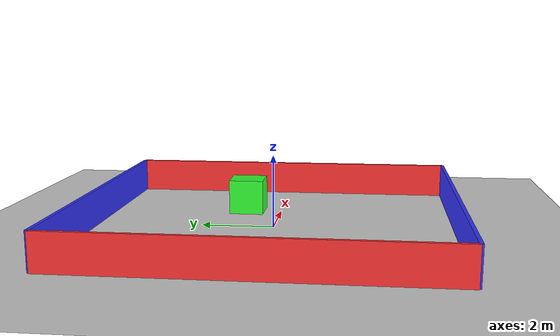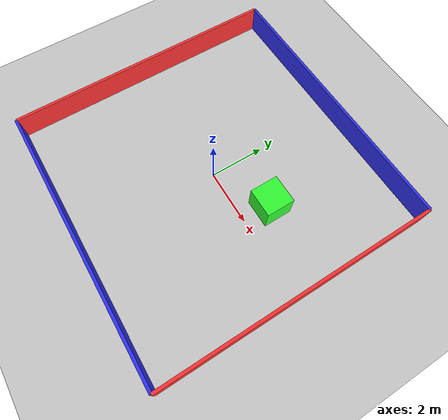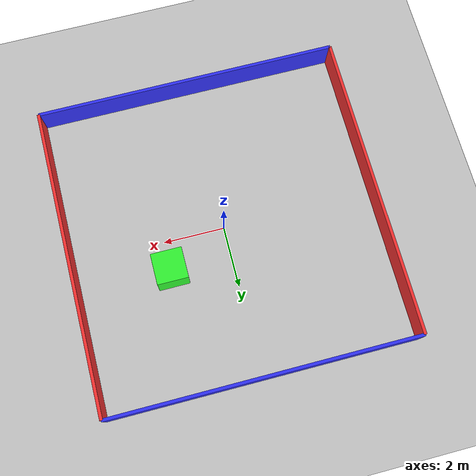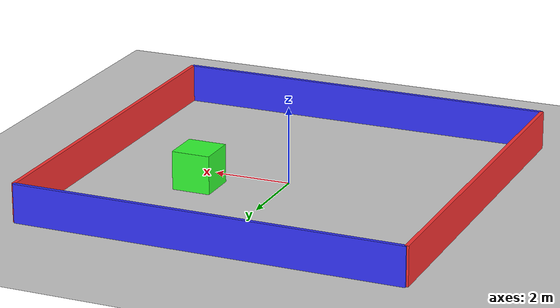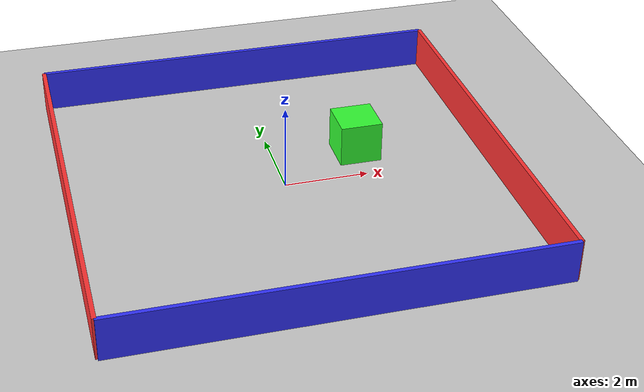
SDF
<?xml version="1.0" ?>
<sdf version="1.8">
  <world name="simple_room">

    <physics name="1ms" type="ignored">
      <max_step_size>0.001</max_step_size>
      <real_time_factor>1.0</real_time_factor>
    </physics>
    <plugin
      filename="libignition-gazebo-physics-system.so"
      name="ignition::gazebo::systems::Physics">
    </plugin>
    <plugin
      filename="libignition-gazebo-user-commands-system.so"
      name="ignition::gazebo::systems::UserCommands">
    </plugin>
    <plugin
      filename="libignition-gazebo-scene-broadcaster-system.so"
      name="ignition::gazebo::systems::SceneBroadcaster">
    </plugin>

    <light type="directional" name="sun">
      <cast_shadows>true</cast_shadows>
      <pose>0 0 10 0 0 0</pose>
      <diffuse>0.8 0.8 0.8 1</diffuse>
      <specular>0.2 0.2 0.2 1</specular>
      <attenuation>
        <range>1000</range>
        <constant>0.9</constant>
        <linear>0.01</linear>
        <quadratic>0.001</quadratic>
      </attenuation>
      <direction>-0.5 0.1 -0.9</direction>
    </light>

    <model name="ground_plane">
      <static>true</static>
      <link name="link">
        <collision name="collision">
          <geometry>
            <plane>
              <normal>0 0 1</normal>
              <size>100 100</size>
            </plane>
          </geometry>
        </collision>
        <visual name="visual">
          <geometry>
            <plane>
              <normal>0 0 1</normal>
              <size>100 100</size>
            </plane>
          </geometry>
          <material>
            <ambient>0.8 0.8 0.8 1</ambient>
            <diffuse>0.8 0.8 0.8 1</diffuse>
            <specular>0.8 0.8 0.8 1</specular>
          </material>
        </visual>
      </link>
    </model>

    <model name="wall_north">
      <static>true</static>
      <pose>0 5 0.5 0 0 0</pose>
      <link name="link">
        <collision name="collision">
          <geometry>
            <box>
              <size>10 0.1 1</size>
            </box>
          </geometry>
        </collision>
        <visual name="visual">
          <geometry>
            <box>
              <size>10 0.1 1</size>
            </box>
          </geometry>
          <material>
            <ambient>0.2 0.2 1.0 1</ambient> <diffuse>0.2 0.2 1.0 1</diffuse>
          </material>
        </visual>
      </link>
    </model>

    <model name="wall_south">
      <static>true</static>
      <pose>0 -5 0.5 0 0 0</pose>
      <link name="link">
        <collision name="collision">
          <geometry>
            <box>
              <size>10 0.1 1</size>
            </box>
          </geometry>
        </collision>
        <visual name="visual">
          <geometry>
            <box>
              <size>10 0.1 1</size>
            </box>
          </geometry>
          <material>
            <ambient>0.2 0.2 1.0 1</ambient>
            <diffuse>0.2 0.2 1.0 1</diffuse>
          </material>
        </visual>
      </link>
    </model>

    <model name="wall_east">
      <static>true</static>
      <pose>5 0 0.5 0 0 0</pose>
      <link name="link">
        <collision name="collision">
          <geometry>
            <box>
              <size>0.1 10 1</size>
            </box>
          </geometry>
        </collision>
        <visual name="visual">
          <geometry>
            <box>
              <size>0.1 10 1</size>
            </box>
          </geometry>
          <material>
            <ambient>1.0 0.2 0.2 1</ambient> <diffuse>1.0 0.2 0.2 1</diffuse>
          </material>
        </visual>
      </link>
    </model>

    <model name="wall_west">
      <static>true</static>
      <pose>-5 0 0.5 0 0 0</pose>
      <link name="link">
        <collision name="collision">
          <geometry>
            <box>
              <size>0.1 10 1</size>
            </box>
          </geometry>
        </collision>
        <visual name="visual">
          <geometry>
            <box>
              <size>0.1 10 1</size>
            </box>
          </geometry>
          <material>
            <ambient>1.0 0.2 0.2 1</ambient>
            <diffuse>1.0 0.2 0.2 1</diffuse>
          </material>
        </visual>
      </link>
    </model>

    <model name="landmark_box">
      <static>true</static>
      <pose>2 1 0.5 0 0 0</pose> <link name="link">
        <collision name="collision">
          <geometry>
            <box><size>1 1 1</size></box>
          </geometry>
        </collision>
        <visual name="visual">
          <geometry>
            <box><size>1 1 1</size></box>
          </geometry>
          <material>
            <ambient>0.2 1.0 0.2 1</ambient> <diffuse>0.2 1.0 0.2 1</diffuse>
          </material>
        </visual>
      </link>
    </model>

  </world>
</sdf>
